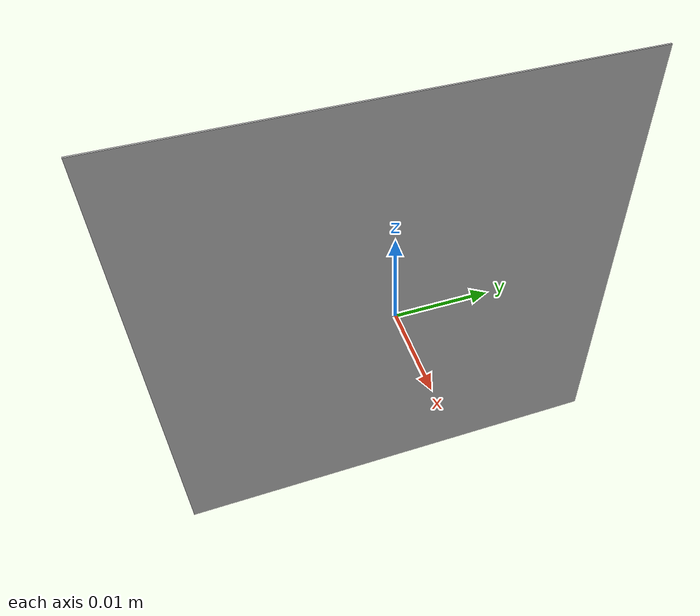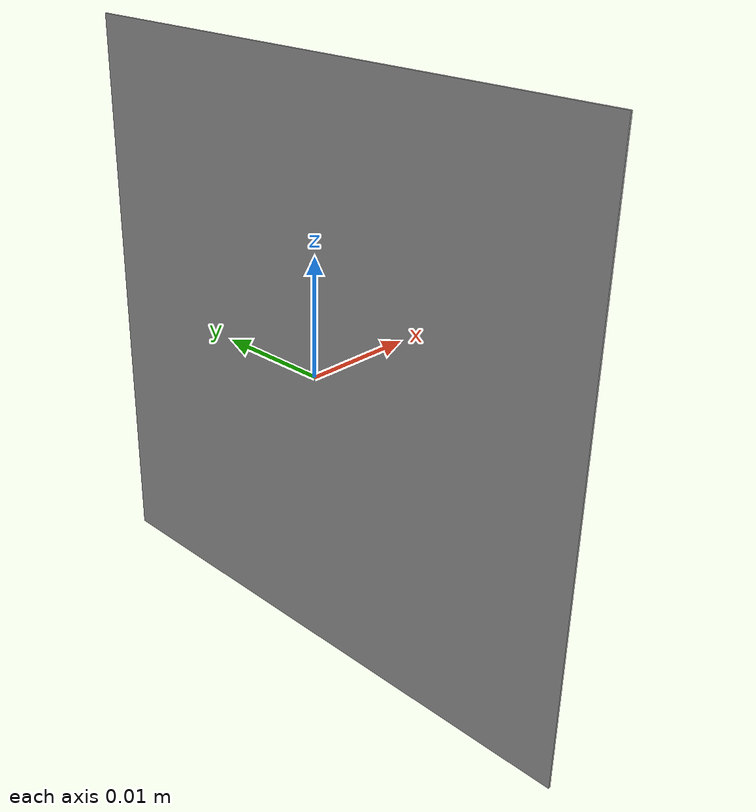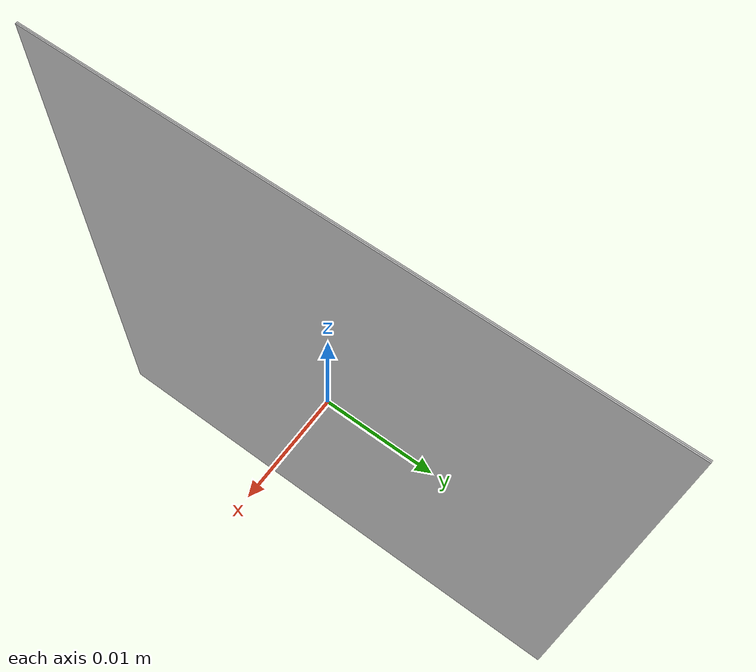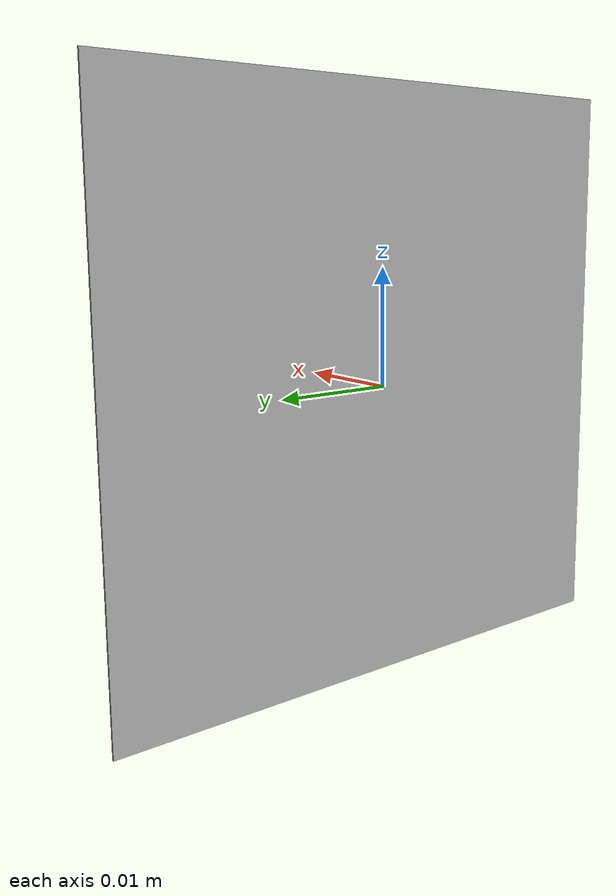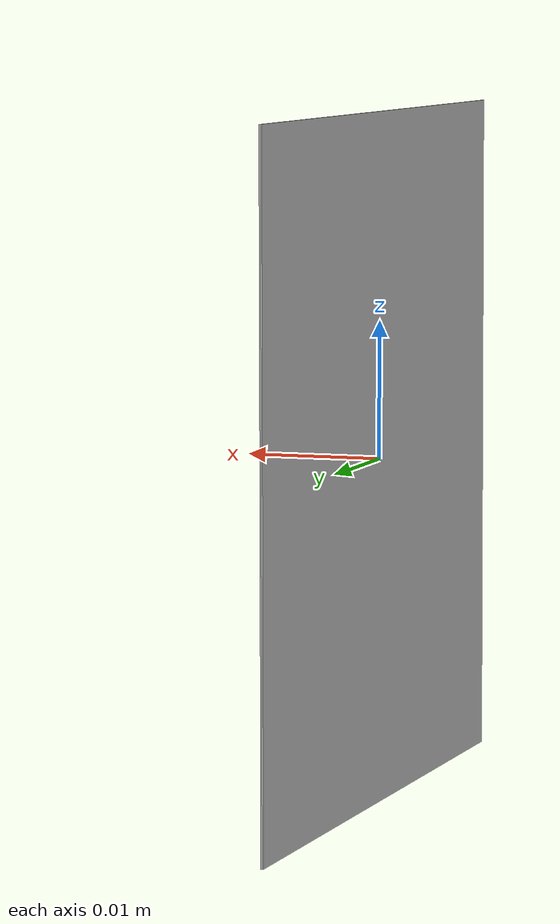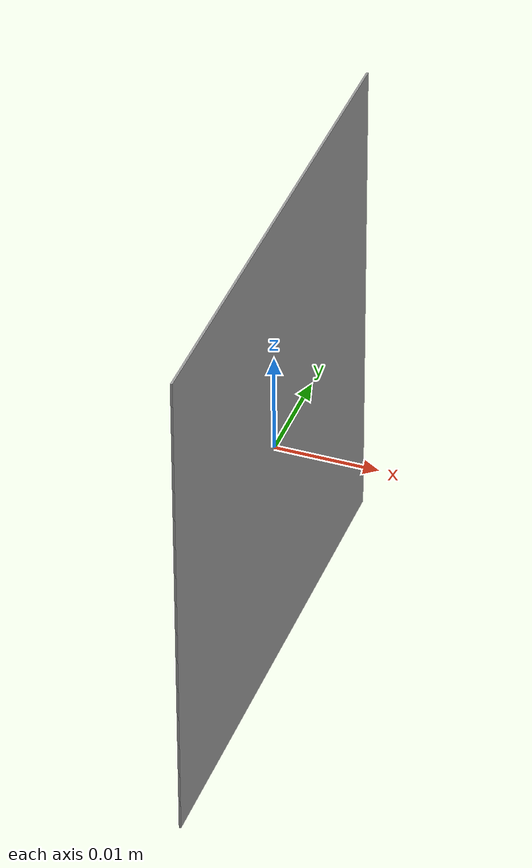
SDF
<?xml version="1.0"?>
<sdf version="1.6">
  <model name="aruco_marker_1">
    <link name="link">
      <inertial>
        <pose>0 0 0 0 0 0</pose>
        <mass>0.001</mass>
        <inertia>
          <ixx>3.7499999999999997e-06</ixx>
          <ixy>0.0</ixy>
          <ixz>0.0</ixz>
          <iyy>1.8750008333333333e-06</iyy>
          <iyz>0.0</iyz>
          <izz>1.8750008333333333e-06</izz>
        </inertia>
      </inertial>
      <visual name="front_visual">
        <pose>0.00005 0 0 0 0 0</pose>
        <geometry>
          <box>
            <size>0.0001 0.05 0.05</size>
          </box>
        </geometry>
        <material>
          <script>
            <uri>model://aruco_marker_1/materials/scripts</uri>
            <uri>model://aruco_marker_1/materials/textures</uri>
            <name>marker_1</name>
            <scale>1 1 1</scale>
          </script>
        </material>
      </visual>
      <!-- Hide the marker from the back -->
      <visual name="rear_visual">
        <pose>-0.00005 0 0 0 0 0</pose>
        <geometry>
          <box>
            <size>0.0001 0.05 0.05</size>
          </box>
        </geometry>
      </visual>
      <collision name="collision">
        <pose>0 0 0 0 0 0</pose>
        <geometry>
          <box>
            <size>0.0001 0.05 0.05</size>
          </box>
        </geometry>
      </collision>
    </link>
  </model>
</sdf>
